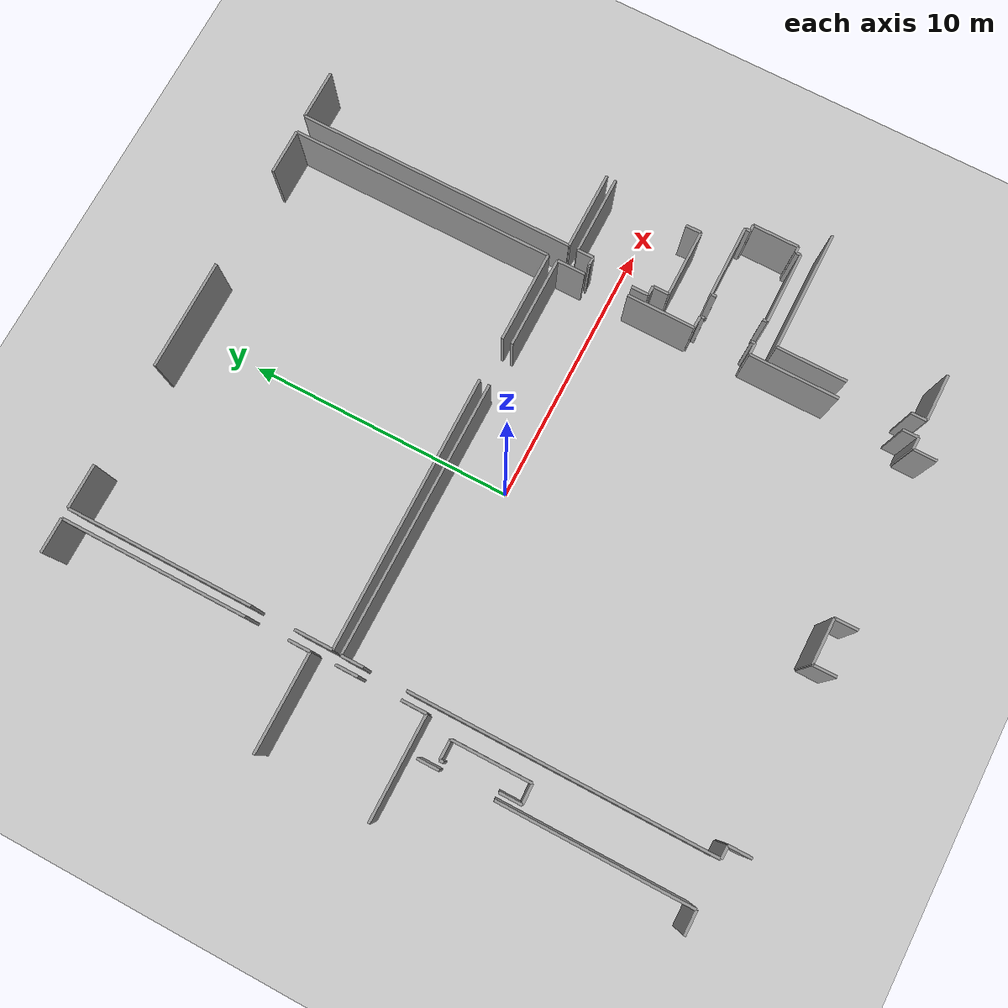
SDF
<sdf version="1.6">
 <world name="default">
  <model name="ground_plane">
   <static>1</static>
   <link name="link">
    <collision name="collision">
     <geometry><plane><normal>0 0 1</normal><size>100 100</size></plane></geometry>
     <surface><friction><ode><mu>100</mu><mu2>50</mu2></ode></friction></surface>
    </collision>
    <visual name="visual">
     <cast_shadows>0</cast_shadows>
     <geometry><plane><normal>0 0 1</normal><size>100 100</size></plane></geometry>
     <material>
      <script><uri>file://media/materials/scripts/gazebo.material</uri><name>Gazebo/Grey</name></script>
     </material>
    </visual>
   </link>
  </model>
  <model name="0510034692_Layout1">
   <static>1</static>
   <link name="Wall_60">
    <collision name="Wall_60_Collision">
     <geometry><box><size>1.30162963828 0.1 2.5</size></box></geometry>
     <pose>0.650814819138 0 1.25 0 0 0</pose>
    </collision>
    <visual name="Wall_60_Visual">
     <pose>0.650814819138 0 1.25 0 0 0</pose>
     <geometry><box><size>1.30162963828 0.1 2.5</size></box></geometry>
     <material>
      <script><uri>file://media/materials/scripts/gazebo.material</uri><name>Gazebo/Grey</name></script>
      <ambient>1 1 1 1</ambient>
     </material>
    </visual>
    <pose>47.1642162243 -0.0536741408648 0 0 0 0.0</pose>
   </link>
   <link name="Wall_61">
    <collision name="Wall_61_Collision">
     <geometry><box><size>6.98956589928 0.1 2.5</size></box></geometry>
     <pose>3.49478294964 0 1.25 0 0 0</pose>
    </collision>
    <visual name="Wall_61_Visual">
     <pose>3.49478294964 0 1.25 0 0 0</pose>
     <geometry><box><size>6.98956589928 0.1 2.5</size></box></geometry>
     <material>
      <script><uri>file://media/materials/scripts/gazebo.material</uri><name>Gazebo/Grey</name></script>
      <ambient>1 1 1 1</ambient>
     </material>
    </visual>
    <pose>48.4658458626 -0.0536741408648 0 0 0 -1.57079632679</pose>
   </link>
   <link name="Wall_62">
    <collision name="Wall_62_Collision">
     <geometry><box><size>0.827444616027 0.1 2.5</size></box></geometry>
     <pose>0.413722308013 0 1.25 0 0 0</pose>
    </collision>
    <visual name="Wall_62_Visual">
     <pose>0.413722308013 0 1.25 0 0 0</pose>
     <geometry><box><size>0.827444616027 0.1 2.5</size></box></geometry>
     <material>
      <script><uri>file://media/materials/scripts/gazebo.material</uri><name>Gazebo/Grey</name></script>
      <ambient>1 1 1 1</ambient>
     </material>
    </visual>
    <pose>48.4658458626 -8.63595355347 0 0 0 -1.57079632679</pose>
   </link>
   <link name="Wall_63">
    <collision name="Wall_63_Collision">
     <geometry><box><size>3.66774009043 0.1 2.5</size></box></geometry>
     <pose>1.83387004522 0 1.25 0 0 0</pose>
    </collision>
    <visual name="Wall_63_Visual">
     <pose>1.83387004522 0 1.25 0 0 0</pose>
     <geometry><box><size>3.66774009043 0.1 2.5</size></box></geometry>
     <material>
      <script><uri>file://media/materials/scripts/gazebo.material</uri><name>Gazebo/Grey</name></script>
      <ambient>1 1 1 1</ambient>
     </material>
    </visual>
    <pose>48.4658458626 -9.4633981695 0 0 0 -3.13962067898</pose>
   </link>
   <link name="Wall_137">
    <collision name="Wall_137_Collision">
     <geometry><box><size>0.809172568073 0.1 2.5</size></box></geometry>
     <pose>0.404586284036 0 1.25 0 0 0</pose>
    </collision>
    <visual name="Wall_137_Visual">
     <pose>0.404586284036 0 1.25 0 0 0</pose>
     <geometry><box><size>0.809172568073 0.1 2.5</size></box></geometry>
     <material>
      <script><uri>file://media/materials/scripts/gazebo.material</uri><name>Gazebo/Grey</name></script>
      <ambient>1 1 1 1</ambient>
     </material>
    </visual>
    <pose>47.1099076373 -14.1043714606 0 0 0 -1.57079632679</pose>
   </link>
   <link name="Wall_138">
    <collision name="Wall_138_Collision">
     <geometry><box><size>7.07267833963 0.1 2.5</size></box></geometry>
     <pose>3.53633916981 0 1.25 0 0 0</pose>
    </collision>
    <visual name="Wall_138_Visual">
     <pose>3.53633916981 0 1.25 0 0 0</pose>
     <geometry><box><size>7.07267833963 0.1 2.5</size></box></geometry>
     <material>
      <script><uri>file://media/materials/scripts/gazebo.material</uri><name>Gazebo/Grey</name></script>
      <ambient>1 1 1 1</ambient>
     </material>
    </visual>
    <pose>47.1099076373 -16.8781698514 0 0 0 -1.57079632679</pose>
   </link>
   <link name="Wall_139">
    <collision name="Wall_139_Collision">
     <geometry><box><size>0.875408741906 0.1 2.5</size></box></geometry>
     <pose>0.437704370953 0 1.25 0 0 0</pose>
    </collision>
    <visual name="Wall_139_Visual">
     <pose>0.437704370953 0 1.25 0 0 0</pose>
     <geometry><box><size>0.875408741906 0.1 2.5</size></box></geometry>
     <material>
      <script><uri>file://media/materials/scripts/gazebo.material</uri><name>Gazebo/Grey</name></script>
      <ambient>1 1 1 1</ambient>
     </material>
    </visual>
    <pose>47.1099076373 -23.950848191 0 0 0 3.14159265359</pose>
   </link>
   <link name="Wall_141">
    <collision name="Wall_141_Collision">
     <geometry><box><size>0.832773963347 0.1 2.5</size></box></geometry>
     <pose>0.416386981673 0 1.25 0 0 0</pose>
    </collision>
    <visual name="Wall_141_Visual">
     <pose>0.416386981673 0 1.25 0 0 0</pose>
     <geometry><box><size>0.832773963347 0.1 2.5</size></box></geometry>
     <material>
      <script><uri>file://media/materials/scripts/gazebo.material</uri><name>Gazebo/Grey</name></script>
      <ambient>1 1 1 1</ambient>
     </material>
    </visual>
    <pose>47.3913479315 -17.7198260603 0 0 0 1.57079632679</pose>
   </link>
   <link name="Wall_142">
    <collision name="Wall_142_Collision">
     <geometry><box><size>0.139578144093 0.1 2.5</size></box></geometry>
     <pose>0.0697890720464 0 1.25 0 0 0</pose>
    </collision>
    <visual name="Wall_142_Visual">
     <pose>0.0697890720464 0 1.25 0 0 0</pose>
     <geometry><box><size>0.139578144093 0.1 2.5</size></box></geometry>
     <material>
      <script><uri>file://media/materials/scripts/gazebo.material</uri><name>Gazebo/Grey</name></script>
      <ambient>1 1 1 1</ambient>
     </material>
    </visual>
    <pose>47.3913479315 -14.9158280347 0 0 0 1.57079632679</pose>
   </link>
   <link name="Wall_143">
    <collision name="Wall_143_Collision">
     <geometry><box><size>0.732658367266 0.1 2.5</size></box></geometry>
     <pose>0.366329183633 0 1.25 0 0 0</pose>
    </collision>
    <visual name="Wall_143_Visual">
     <pose>0.366329183633 0 1.25 0 0 0</pose>
     <geometry><box><size>0.732658367266 0.1 2.5</size></box></geometry>
     <material>
      <script><uri>file://media/materials/scripts/gazebo.material</uri><name>Gazebo/Grey</name></script>
      <ambient>1 1 1 1</ambient>
     </material>
    </visual>
    <pose>47.3913479315 -14.7762498906 0 0 0 0.0</pose>
   </link>
   <link name="Wall_144">
    <collision name="Wall_144_Collision">
     <geometry><box><size>2.93114102595 0.1 2.5</size></box></geometry>
     <pose>1.46557051298 0 1.25 0 0 0</pose>
    </collision>
    <visual name="Wall_144_Visual">
     <pose>1.46557051298 0 1.25 0 0 0</pose>
     <geometry><box><size>2.93114102595 0.1 2.5</size></box></geometry>
     <material>
      <script><uri>file://media/materials/scripts/gazebo.material</uri><name>Gazebo/Grey</name></script>
      <ambient>1 1 1 1</ambient>
     </material>
    </visual>
    <pose>48.1240062988 -14.7762498906 0 0 0 -1.57079632679</pose>
   </link>
   <link name="Wall_145">
    <collision name="Wall_145_Collision">
     <geometry><box><size>0.732763888251 0.1 2.5</size></box></geometry>
     <pose>0.366381944125 0 1.25 0 0 0</pose>
    </collision>
    <visual name="Wall_145_Visual">
     <pose>0.366381944125 0 1.25 0 0 0</pose>
     <geometry><box><size>0.732763888251 0.1 2.5</size></box></geometry>
     <material>
      <script><uri>file://media/materials/scripts/gazebo.material</uri><name>Gazebo/Grey</name></script>
      <ambient>1 1 1 1</ambient>
     </material>
    </visual>
    <pose>48.1240062988 -17.7073909165 0 0 0 -3.12462164713</pose>
   </link>
   <link name="Wall_204">
    <collision name="Wall_204_Collision">
     <geometry><box><size>0.829855511243 0.1 2.5</size></box></geometry>
     <pose>0.414927755622 0 1.25 0 0 0</pose>
    </collision>
    <visual name="Wall_204_Visual">
     <pose>0.414927755622 0 1.25 0 0 0</pose>
     <geometry><box><size>0.829855511243 0.1 2.5</size></box></geometry>
     <material>
      <script><uri>file://media/materials/scripts/gazebo.material</uri><name>Gazebo/Grey</name></script>
      <ambient>1 1 1 1</ambient>
     </material>
    </visual>
    <pose>48.4800574554 -10.3783963486 0 0 0 -1.57079632679</pose>
   </link>
   <link name="Wall_205">
    <collision name="Wall_205_Collision">
     <geometry><box><size>0.932128224097 0.1 2.5</size></box></geometry>
     <pose>0.466064112048 0 1.25 0 0 0</pose>
    </collision>
    <visual name="Wall_205_Visual">
     <pose>0.466064112048 0 1.25 0 0 0</pose>
     <geometry><box><size>0.932128224097 0.1 2.5</size></box></geometry>
     <material>
      <script><uri>file://media/materials/scripts/gazebo.material</uri><name>Gazebo/Grey</name></script>
      <ambient>1 1 1 1</ambient>
     </material>
    </visual>
    <pose>48.4800574554 -12.7887840079 0 0 0 -1.57079632679</pose>
   </link>
   <link name="Wall_206">
    <collision name="Wall_206_Collision">
     <geometry><box><size>3.83548051045 0.1 2.5</size></box></geometry>
     <pose>1.91774025522 0 1.25 0 0 0</pose>
    </collision>
    <visual name="Wall_206_Visual">
     <pose>1.91774025522 0 1.25 0 0 0</pose>
     <geometry><box><size>3.83548051045 0.1 2.5</size></box></geometry>
     <material>
      <script><uri>file://media/materials/scripts/gazebo.material</uri><name>Gazebo/Grey</name></script>
      <ambient>1 1 1 1</ambient>
     </material>
    </visual>
    <pose>48.4800574554 -13.720912232 0 0 0 3.14159265359</pose>
   </link>
   <link name="Wall_214">
    <collision name="Wall_214_Collision">
     <geometry><box><size>1.4216668422 0.1 2.5</size></box></geometry>
     <pose>0.710833421098 0 1.25 0 0 0</pose>
    </collision>
    <visual name="Wall_214_Visual">
     <pose>0.710833421098 0 1.25 0 0 0</pose>
     <geometry><box><size>1.4216668422 0.1 2.5</size></box></geometry>
     <material>
      <script><uri>file://media/materials/scripts/gazebo.material</uri><name>Gazebo/Grey</name></script>
      <ambient>1 1 1 1</ambient>
     </material>
    </visual>
    <pose>48.8493050912 -10.0687866472 0 0 0 1.57079632679</pose>
   </link>
   <link name="Wall_215">
    <collision name="Wall_215_Collision">
     <geometry><box><size>6.98093743219 0.1 2.5</size></box></geometry>
     <pose>3.4904687161 0 1.25 0 0 0</pose>
    </collision>
    <visual name="Wall_215_Visual">
     <pose>3.4904687161 0 1.25 0 0 0</pose>
     <geometry><box><size>6.98093743219 0.1 2.5</size></box></geometry>
     <material>
      <script><uri>file://media/materials/scripts/gazebo.material</uri><name>Gazebo/Grey</name></script>
      <ambient>1 1 1 1</ambient>
     </material>
    </visual>
    <pose>48.8493050912 -7.03143934251 0 0 0 1.57079632679</pose>
   </link>
   <link name="Wall_216">
    <collision name="Wall_216_Collision">
     <geometry><box><size>1.66123369315 0.1 2.5</size></box></geometry>
     <pose>0.830616846574 0 1.25 0 0 0</pose>
    </collision>
    <visual name="Wall_216_Visual">
     <pose>0.830616846574 0 1.25 0 0 0</pose>
     <geometry><box><size>1.66123369315 0.1 2.5</size></box></geometry>
     <material>
      <script><uri>file://media/materials/scripts/gazebo.material</uri><name>Gazebo/Grey</name></script>
      <ambient>1 1 1 1</ambient>
     </material>
    </visual>
    <pose>48.8493050912 -0.0505019103172 0 0 0 0.0</pose>
   </link>
   <link name="Wall_217">
    <collision name="Wall_217_Collision">
     <geometry><box><size>4.12821394538 0.1 2.5</size></box></geometry>
     <pose>2.06410697269 0 1.25 0 0 0</pose>
    </collision>
    <visual name="Wall_217_Visual">
     <pose>2.06410697269 0 1.25 0 0 0</pose>
     <geometry><box><size>4.12821394538 0.1 2.5</size></box></geometry>
     <material>
      <script><uri>file://media/materials/scripts/gazebo.material</uri><name>Gazebo/Grey</name></script>
      <ambient>1 1 1 1</ambient>
     </material>
    </visual>
    <pose>54.3870045134 -0.0505019103172 0 0 0 0.0</pose>
   </link>
   <link name="Wall_218">
    <collision name="Wall_218_Collision">
     <geometry><box><size>1.71160871424 0.1 2.5</size></box></geometry>
     <pose>0.855804357122 0 1.25 0 0 0</pose>
    </collision>
    <visual name="Wall_218_Visual">
     <pose>0.855804357122 0 1.25 0 0 0</pose>
     <geometry><box><size>1.71160871424 0.1 2.5</size></box></geometry>
     <material>
      <script><uri>file://media/materials/scripts/gazebo.material</uri><name>Gazebo/Grey</name></script>
      <ambient>1 1 1 1</ambient>
     </material>
    </visual>
    <pose>62.4084335652 -0.0505019103172 0 0 0 0.0</pose>
   </link>
   <link name="Wall_219">
    <collision name="Wall_219_Collision">
     <geometry><box><size>9.96790971578 0.1 2.5</size></box></geometry>
     <pose>4.98395485789 0 1.25 0 0 0</pose>
    </collision>
    <visual name="Wall_219_Visual">
     <pose>4.98395485789 0 1.25 0 0 0</pose>
     <geometry><box><size>9.96790971578 0.1 2.5</size></box></geometry>
     <material>
      <script><uri>file://media/materials/scripts/gazebo.material</uri><name>Gazebo/Grey</name></script>
      <ambient>1 1 1 1</ambient>
     </material>
    </visual>
    <pose>64.1200422795 -0.0505019103172 0 0 0 -1.57079632679</pose>
   </link>
   <link name="Wall_220">
    <collision name="Wall_220_Collision">
     <geometry><box><size>3.40659494042 0.1 2.5</size></box></geometry>
     <pose>1.70329747021 0 1.25 0 0 0</pose>
    </collision>
    <visual name="Wall_220_Visual">
     <pose>1.70329747021 0 1.25 0 0 0</pose>
     <geometry><box><size>3.40659494042 0.1 2.5</size></box></geometry>
     <material>
      <script><uri>file://media/materials/scripts/gazebo.material</uri><name>Gazebo/Grey</name></script>
      <ambient>1 1 1 1</ambient>
     </material>
    </visual>
    <pose>64.1200422795 -10.0184116261 0 0 0 3.14159265359</pose>
   </link>
   <link name="Wall_221">
    <collision name="Wall_221_Collision">
     <geometry><box><size>10.2256189196 0.1 2.5</size></box></geometry>
     <pose>5.1128094598 0 1.25 0 0 0</pose>
    </collision>
    <visual name="Wall_221_Visual">
     <pose>5.1128094598 0 1.25 0 0 0</pose>
     <geometry><box><size>10.2256189196 0.1 2.5</size></box></geometry>
     <material>
      <script><uri>file://media/materials/scripts/gazebo.material</uri><name>Gazebo/Grey</name></script>
      <ambient>1 1 1 1</ambient>
     </material>
    </visual>
    <pose>59.0747999274 -10.0184116261 0 0 0 -3.13666627943</pose>
   </link>
   <link name="Wall_222">
    <collision name="Wall_222_Collision">
     <geometry><box><size>10.489551307 0.1 2.5</size></box></geometry>
     <pose>5.24477565351 0 1.25 0 0 0</pose>
    </collision>
    <visual name="Wall_222_Visual">
     <pose>5.24477565351 0 1.25 0 0 0</pose>
     <geometry><box><size>10.489551307 0.1 2.5</size></box></geometry>
     <material>
      <script><uri>file://media/materials/scripts/gazebo.material</uri><name>Gazebo/Grey</name></script>
      <ambient>1 1 1 1</ambient>
     </material>
    </visual>
    <pose>64.7758057783 -10.489551307 0 0 0 1.57079632679</pose>
   </link>
   <link name="Wall_223">
    <collision name="Wall_223_Collision">
     <geometry><box><size>1.8631144452 0.1 2.5</size></box></geometry>
     <pose>0.931557222598 0 1.25 0 0 0</pose>
    </collision>
    <visual name="Wall_223_Visual">
     <pose>0.931557222598 0 1.25 0 0 0</pose>
     <geometry><box><size>1.8631144452 0.1 2.5</size></box></geometry>
     <material>
      <script><uri>file://media/materials/scripts/gazebo.material</uri><name>Gazebo/Grey</name></script>
      <ambient>1 1 1 1</ambient>
     </material>
    </visual>
    <pose>64.7758057783 -0.0 0 0 0 0.0</pose>
   </link>
   <link name="Wall_227">
    <collision name="Wall_227_Collision">
     <geometry><box><size>2.912868978 0.1 2.5</size></box></geometry>
     <pose>1.456434489 0 1.25 0 0 0</pose>
    </collision>
    <visual name="Wall_227_Visual">
     <pose>1.456434489 0 1.25 0 0 0</pose>
     <geometry><box><size>2.912868978 0.1 2.5</size></box></geometry>
     <material>
      <script><uri>file://media/materials/scripts/gazebo.material</uri><name>Gazebo/Grey</name></script>
      <ambient>1 1 1 1</ambient>
     </material>
    </visual>
    <pose>67.6886747563 -10.489551307 0 0 0 3.14159265359</pose>
   </link>
   <link name="Wall_314">
    <collision name="Wall_314_Collision">
     <geometry><box><size>0.565925929686 0.1 2.5</size></box></geometry>
     <pose>0.282962964843 0 1.25 0 0 0</pose>
    </collision>
    <visual name="Wall_314_Visual">
     <pose>0.282962964843 0 1.25 0 0 0</pose>
     <geometry><box><size>0.565925929686 0.1 2.5</size></box></geometry>
     <material>
      <script><uri>file://media/materials/scripts/gazebo.material</uri><name>Gazebo/Grey</name></script>
      <ambient>1 1 1 1</ambient>
     </material>
    </visual>
    <pose>64.781388904 -23.9493255203 0 0 0 1.57079632679</pose>
   </link>
   <link name="Wall_315">
    <collision name="Wall_315_Collision">
     <geometry><box><size>2.61176085442 0.1 2.5</size></box></geometry>
     <pose>1.30588042721 0 1.25 0 0 0</pose>
    </collision>
    <visual name="Wall_315_Visual">
     <pose>1.30588042721 0 1.25 0 0 0</pose>
     <geometry><box><size>2.61176085442 0.1 2.5</size></box></geometry>
     <material>
      <script><uri>file://media/materials/scripts/gazebo.material</uri><name>Gazebo/Grey</name></script>
      <ambient>1 1 1 1</ambient>
     </material>
    </visual>
    <pose>64.781388904 -21.0183113836 0 0 0 1.57079632679</pose>
   </link>
   <link name="Wall_316">
    <collision name="Wall_316_Collision">
     <geometry><box><size>4.55798773996 0.1 2.5</size></box></geometry>
     <pose>2.27899386998 0 1.25 0 0 0</pose>
    </collision>
    <visual name="Wall_316_Visual">
     <pose>2.27899386998 0 1.25 0 0 0</pose>
     <geometry><box><size>4.55798773996 0.1 2.5</size></box></geometry>
     <material>
      <script><uri>file://media/materials/scripts/gazebo.material</uri><name>Gazebo/Grey</name></script>
      <ambient>1 1 1 1</ambient>
     </material>
    </visual>
    <pose>64.781388904 -18.4065505292 0 0 0 0.0</pose>
   </link>
   <link name="Wall_323">
    <collision name="Wall_323_Collision">
     <geometry><box><size>1.78190863671 0.1 2.5</size></box></geometry>
     <pose>0.890954318355 0 1.25 0 0 0</pose>
    </collision>
    <visual name="Wall_323_Visual">
     <pose>0.890954318355 0 1.25 0 0 0</pose>
     <geometry><box><size>1.78190863671 0.1 2.5</size></box></geometry>
     <material>
      <script><uri>file://media/materials/scripts/gazebo.material</uri><name>Gazebo/Grey</name></script>
      <ambient>1 1 1 1</ambient>
     </material>
    </visual>
    <pose>66.5632942472 -23.9527515293 0 0 0 3.13966998986</pose>
   </link>
   <link name="Wall_324">
    <collision name="Wall_324_Collision">
     <geometry><box><size>0.596379342942 0.1 2.5</size></box></geometry>
     <pose>0.298189671471 0 1.25 0 0 0</pose>
    </collision>
    <visual name="Wall_324_Visual">
     <pose>0.298189671471 0 1.25 0 0 0</pose>
     <geometry><box><size>0.596379342942 0.1 2.5</size></box></geometry>
     <material>
      <script><uri>file://media/materials/scripts/gazebo.material</uri><name>Gazebo/Grey</name></script>
      <ambient>1 1 1 1</ambient>
     </material>
    </visual>
    <pose>64.7845611346 -14.3194486917 0 0 0 1.57079632679</pose>
   </link>
   <link name="Wall_325">
    <collision name="Wall_325_Collision">
     <geometry><box><size>0.355289821327 0.1 2.5</size></box></geometry>
     <pose>0.177644910664 0 1.25 0 0 0</pose>
    </collision>
    <visual name="Wall_325_Visual">
     <pose>0.177644910664 0 1.25 0 0 0</pose>
     <geometry><box><size>0.355289821327 0.1 2.5</size></box></geometry>
     <material>
      <script><uri>file://media/materials/scripts/gazebo.material</uri><name>Gazebo/Grey</name></script>
      <ambient>1 1 1 1</ambient>
     </material>
    </visual>
    <pose>64.7845611346 -13.7230693488 0 0 0 3.14159265359</pose>
   </link>
   <link name="Wall_326">
    <collision name="Wall_326_Collision">
     <geometry><box><size>0.647135031703 0.1 2.5</size></box></geometry>
     <pose>0.323567515852 0 1.25 0 0 0</pose>
    </collision>
    <visual name="Wall_326_Visual">
     <pose>0.323567515852 0 1.25 0 0 0</pose>
     <geometry><box><size>0.647135031703 0.1 2.5</size></box></geometry>
     <material>
      <script><uri>file://media/materials/scripts/gazebo.material</uri><name>Gazebo/Grey</name></script>
      <ambient>1 1 1 1</ambient>
     </material>
    </visual>
    <pose>64.4292713133 -13.7230693488 0 0 0 1.57079632679</pose>
   </link>
   <link name="Wall_327">
    <collision name="Wall_327_Collision">
     <geometry><box><size>0.0661092846113 0.1 2.5</size></box></geometry>
     <pose>0.0330546423056 0 1.25 0 0 0</pose>
    </collision>
    <visual name="Wall_327_Visual">
     <pose>0.0330546423056 0 1.25 0 0 0</pose>
     <geometry><box><size>0.0661092846113 0.1 2.5</size></box></geometry>
     <material>
      <script><uri>file://media/materials/scripts/gazebo.material</uri><name>Gazebo/Grey</name></script>
      <ambient>1 1 1 1</ambient>
     </material>
    </visual>
    <pose>64.4292713133 -11.4936257199 0 0 0 1.57079632679</pose>
   </link>
   <link name="Wall_328">
    <collision name="Wall_328_Collision">
     <geometry><box><size>0.342093342249 0.1 2.5</size></box></geometry>
     <pose>0.171046671125 0 1.25 0 0 0</pose>
    </collision>
    <visual name="Wall_328_Visual">
     <pose>0.171046671125 0 1.25 0 0 0</pose>
     <geometry><box><size>0.342093342249 0.1 2.5</size></box></geometry>
     <material>
      <script><uri>file://media/materials/scripts/gazebo.material</uri><name>Gazebo/Grey</name></script>
      <ambient>1 1 1 1</ambient>
     </material>
    </visual>
    <pose>64.4292713133 -11.4275164353 0 0 0 0.0</pose>
   </link>
   <link name="Wall_329">
    <collision name="Wall_329_Collision">
     <geometry><box><size>0.595871786055 0.1 2.5</size></box></geometry>
     <pose>0.297935893027 0 1.25 0 0 0</pose>
    </collision>
    <visual name="Wall_329_Visual">
     <pose>0.297935893027 0 1.25 0 0 0</pose>
     <geometry><box><size>0.595871786055 0.1 2.5</size></box></geometry>
     <material>
      <script><uri>file://media/materials/scripts/gazebo.material</uri><name>Gazebo/Grey</name></script>
      <ambient>1 1 1 1</ambient>
     </material>
    </visual>
    <pose>64.7713646555 -11.4275164353 0 0 0 1.57079632679</pose>
   </link>
   <link name="Wall_330">
    <collision name="Wall_330_Collision">
     <geometry><box><size>2.9239083403 0.1 2.5</size></box></geometry>
     <pose>1.46195417015 0 1.25 0 0 0</pose>
    </collision>
    <visual name="Wall_330_Visual">
     <pose>1.46195417015 0 1.25 0 0 0</pose>
     <geometry><box><size>2.9239083403 0.1 2.5</size></box></geometry>
     <material>
      <script><uri>file://media/materials/scripts/gazebo.material</uri><name>Gazebo/Grey</name></script>
      <ambient>1 1 1 1</ambient>
     </material>
    </visual>
    <pose>64.7713646555 -10.8316446493 0 0 0 0.0</pose>
   </link>
   <link name="Wall_368">
    <collision name="Wall_368_Collision">
     <geometry><box><size>0.573158615334 0.1 2.5</size></box></geometry>
     <pose>0.286579307667 0 1.25 0 0 0</pose>
    </collision>
    <visual name="Wall_368_Visual">
     <pose>0.286579307667 0 1.25 0 0 0</pose>
     <geometry><box><size>0.573158615334 0.1 2.5</size></box></geometry>
     <material>
      <script><uri>file://media/materials/scripts/gazebo.material</uri><name>Gazebo/Grey</name></script>
      <ambient>1 1 1 1</ambient>
     </material>
    </visual>
    <pose>67.3206960128 -13.7488278608 0 0 0 -1.57079632679</pose>
   </link>
   <link name="Wall_369">
    <collision name="Wall_369_Collision">
     <geometry><box><size>2.53613614788 0.1 2.5</size></box></geometry>
     <pose>1.26806807394 0 1.25 0 0 0</pose>
    </collision>
    <visual name="Wall_369_Visual">
     <pose>1.26806807394 0 1.25 0 0 0</pose>
     <geometry><box><size>2.53613614788 0.1 2.5</size></box></geometry>
     <material>
      <script><uri>file://media/materials/scripts/gazebo.material</uri><name>Gazebo/Grey</name></script>
      <ambient>1 1 1 1</ambient>
     </material>
    </visual>
    <pose>67.3206960128 -14.3219864761 0 0 0 3.1405920035</pose>
   </link>
   <link name="Wall_370">
    <collision name="Wall_370_Collision">
     <geometry><box><size>11.1681548658 0.1 2.5</size></box></geometry>
     <pose>5.58407743288 0 1.25 0 0 0</pose>
    </collision>
    <visual name="Wall_370_Visual">
     <pose>5.58407743288 0 1.25 0 0 0</pose>
     <geometry><box><size>11.1681548658 0.1 2.5</size></box></geometry>
     <material>
      <script><uri>file://media/materials/scripts/gazebo.material</uri><name>Gazebo/Grey</name></script>
      <ambient>1 1 1 1</ambient>
     </material>
    </visual>
    <pose>48.818344121 -23.9681051252 0 0 0 1.57079632679</pose>
   </link>
   <link name="Wall_371">
    <collision name="Wall_371_Collision">
     <geometry><box><size>0.834804190897 0.1 2.5</size></box></geometry>
     <pose>0.417402095449 0 1.25 0 0 0</pose>
    </collision>
    <visual name="Wall_371_Visual">
     <pose>0.417402095449 0 1.25 0 0 0</pose>
     <geometry><box><size>0.834804190897 0.1 2.5</size></box></geometry>
     <material>
      <script><uri>file://media/materials/scripts/gazebo.material</uri><name>Gazebo/Grey</name></script>
      <ambient>1 1 1 1</ambient>
     </material>
    </visual>
    <pose>48.818344121 -11.2265239078 0 0 0 1.57079632679</pose>
   </link>
   <link name="Wall_372">
    <collision name="Wall_372_Collision">
     <geometry><box><size>10.2534104651 0.1 2.5</size></box></geometry>
     <pose>5.12670523253 0 1.25 0 0 0</pose>
    </collision>
    <visual name="Wall_372_Visual">
     <pose>5.12670523253 0 1.25 0 0 0</pose>
     <geometry><box><size>10.2534104651 0.1 2.5</size></box></geometry>
     <material>
      <script><uri>file://media/materials/scripts/gazebo.material</uri><name>Gazebo/Grey</name></script>
      <ambient>1 1 1 1</ambient>
     </material>
    </visual>
    <pose>48.818344121 -10.3917197169 0 0 0 0.0</pose>
   </link>
   <link name="Wall_373">
    <collision name="Wall_373_Collision">
     <geometry><box><size>3.39999670088 0.1 2.5</size></box></geometry>
     <pose>1.69999835044 0 1.25 0 0 0</pose>
    </collision>
    <visual name="Wall_373_Visual">
     <pose>1.69999835044 0 1.25 0 0 0</pose>
     <geometry><box><size>3.39999670088 0.1 2.5</size></box></geometry>
     <material>
      <script><uri>file://media/materials/scripts/gazebo.material</uri><name>Gazebo/Grey</name></script>
      <ambient>1 1 1 1</ambient>
     </material>
    </visual>
    <pose>60.6974592971 -10.3917197169 0 0 0 0.0</pose>
   </link>
   <link name="Wall_374">
    <collision name="Wall_374_Collision">
     <geometry><box><size>1.05749477534 0.1 2.5</size></box></geometry>
     <pose>0.528747387668 0 1.25 0 0 0</pose>
    </collision>
    <visual name="Wall_374_Visual">
     <pose>0.528747387668 0 1.25 0 0 0</pose>
     <geometry><box><size>1.05749477534 0.1 2.5</size></box></geometry>
     <material>
      <script><uri>file://media/materials/scripts/gazebo.material</uri><name>Gazebo/Grey</name></script>
      <ambient>1 1 1 1</ambient>
     </material>
    </visual>
    <pose>64.097455998 -10.3917197169 0 0 0 -1.57079632679</pose>
   </link>
   <link name="Wall_375">
    <collision name="Wall_375_Collision">
     <geometry><box><size>2.52674507575 0.1 2.5</size></box></geometry>
     <pose>1.26337253787 0 1.25 0 0 0</pose>
    </collision>
    <visual name="Wall_375_Visual">
     <pose>1.26337253787 0 1.25 0 0 0</pose>
     <geometry><box><size>2.52674507575 0.1 2.5</size></box></geometry>
     <material>
      <script><uri>file://media/materials/scripts/gazebo.material</uri><name>Gazebo/Grey</name></script>
      <ambient>1 1 1 1</ambient>
     </material>
    </visual>
    <pose>64.097455998 -13.0935719189 0 0 0 -1.57079632679</pose>
   </link>
   <link name="Wall_376">
    <collision name="Wall_376_Collision">
     <geometry><box><size>0.465730187058 0.1 2.5</size></box></geometry>
     <pose>0.232865093529 0 1.25 0 0 0</pose>
    </collision>
    <visual name="Wall_376_Visual">
     <pose>0.232865093529 0 1.25 0 0 0</pose>
     <geometry><box><size>0.465730187058 0.1 2.5</size></box></geometry>
     <material>
      <script><uri>file://media/materials/scripts/gazebo.material</uri><name>Gazebo/Grey</name></script>
      <ambient>1 1 1 1</ambient>
     </material>
    </visual>
    <pose>64.097455998 -15.6203169947 0 0 0 -0.0141679892644</pose>
   </link>
   <link name="Wall_377">
    <collision name="Wall_377_Collision">
     <geometry><box><size>0.171681117234 0.1 2.5</size></box></geometry>
     <pose>0.0858405586171 0 1.25 0 0 0</pose>
    </collision>
    <visual name="Wall_377_Visual">
     <pose>0.0858405586171 0 1.25 0 0 0</pose>
     <geometry><box><size>0.171681117234 0.1 2.5</size></box></geometry>
     <material>
      <script><uri>file://media/materials/scripts/gazebo.material</uri><name>Gazebo/Grey</name></script>
      <ambient>1 1 1 1</ambient>
     </material>
    </visual>
    <pose>64.5631394424 -15.6269152342 0 0 0 -1.57079632679</pose>
   </link>
   <link name="Wall_378">
    <collision name="Wall_378_Collision">
     <geometry><box><size>0.153535958502 0.1 2.5</size></box></geometry>
     <pose>0.0767679792511 0 1.25 0 0 0</pose>
    </collision>
    <visual name="Wall_378_Visual">
     <pose>0.0767679792511 0 1.25 0 0 0</pose>
     <geometry><box><size>0.153535958502 0.1 2.5</size></box></geometry>
     <material>
      <script><uri>file://media/materials/scripts/gazebo.material</uri><name>Gazebo/Grey</name></script>
      <ambient>1 1 1 1</ambient>
     </material>
    </visual>
    <pose>64.5631394424 -17.5480180538 0 0 0 -1.57079632679</pose>
   </link>
   <link name="Wall_379">
    <collision name="Wall_379_Collision">
     <geometry><box><size>0.446523171875 0.1 2.5</size></box></geometry>
     <pose>0.223261585938 0 1.25 0 0 0</pose>
    </collision>
    <visual name="Wall_379_Visual">
     <pose>0.223261585938 0 1.25 0 0 0</pose>
     <geometry><box><size>0.446523171875 0.1 2.5</size></box></geometry>
     <material>
      <script><uri>file://media/materials/scripts/gazebo.material</uri><name>Gazebo/Grey</name></script>
      <ambient>1 1 1 1</ambient>
     </material>
    </visual>
    <pose>64.5631394424 -17.7015540123 0 0 0 3.14159265359</pose>
   </link>
   <link name="Wall_380">
    <collision name="Wall_380_Collision">
     <geometry><box><size>3.32259427552 0.1 2.5</size></box></geometry>
     <pose>1.66129713776 0 1.25 0 0 0</pose>
    </collision>
    <visual name="Wall_380_Visual">
     <pose>1.66129713776 0 1.25 0 0 0</pose>
     <geometry><box><size>3.32259427552 0.1 2.5</size></box></geometry>
     <material>
      <script><uri>file://media/materials/scripts/gazebo.material</uri><name>Gazebo/Grey</name></script>
      <ambient>1 1 1 1</ambient>
     </material>
    </visual>
    <pose>64.1166162705 -17.7015540123 0 0 0 -1.57079632679</pose>
   </link>
   <link name="Wall_381">
    <collision name="Wall_381_Collision">
     <geometry><box><size>0.581406414758 0.1 2.5</size></box></geometry>
     <pose>0.290703207379 0 1.25 0 0 0</pose>
    </collision>
    <visual name="Wall_381_Visual">
     <pose>0.290703207379 0 1.25 0 0 0</pose>
     <geometry><box><size>0.581406414758 0.1 2.5</size></box></geometry>
     <material>
      <script><uri>file://media/materials/scripts/gazebo.material</uri><name>Gazebo/Grey</name></script>
      <ambient>1 1 1 1</ambient>
     </material>
    </visual>
    <pose>64.1166162705 -23.3666502134 0 0 0 -1.57079632679</pose>
   </link>
   <link name="Wall_382">
    <collision name="Wall_382_Collision">
     <geometry><box><size>0.455024749743 0.1 2.5</size></box></geometry>
     <pose>0.227512374871 0 1.25 0 0 0</pose>
    </collision>
    <visual name="Wall_382_Visual">
     <pose>0.227512374871 0 1.25 0 0 0</pose>
     <geometry><box><size>0.455024749743 0.1 2.5</size></box></geometry>
     <material>
      <script><uri>file://media/materials/scripts/gazebo.material</uri><name>Gazebo/Grey</name></script>
      <ambient>1 1 1 1</ambient>
     </material>
    </visual>
    <pose>64.1166162705 -23.9480566281 0 0 0 3.14159265359</pose>
   </link>
   <link name="Wall_383">
    <collision name="Wall_383_Collision">
     <geometry><box><size>0.876550744903 0.1 2.5</size></box></geometry>
     <pose>0.438275372452 0 1.25 0 0 0</pose>
    </collision>
    <visual name="Wall_383_Visual">
     <pose>0.438275372452 0 1.25 0 0 0</pose>
     <geometry><box><size>0.876550744903 0.1 2.5</size></box></geometry>
     <material>
      <script><uri>file://media/materials/scripts/gazebo.material</uri><name>Gazebo/Grey</name></script>
      <ambient>1 1 1 1</ambient>
     </material>
    </visual>
    <pose>63.6615915208 -23.9480566281 0 0 0 -1.57079632679</pose>
   </link>
   <link name="Wall_384">
    <collision name="Wall_384_Collision">
     <geometry><box><size>0.859293810724 0.1 2.5</size></box></geometry>
     <pose>0.429646905362 0 1.25 0 0 0</pose>
    </collision>
    <visual name="Wall_384_Visual">
     <pose>0.429646905362 0 1.25 0 0 0</pose>
     <geometry><box><size>0.859293810724 0.1 2.5</size></box></geometry>
     <material>
      <script><uri>file://media/materials/scripts/gazebo.material</uri><name>Gazebo/Grey</name></script>
      <ambient>1 1 1 1</ambient>
     </material>
    </visual>
    <pose>57.3085019585 -24.824607373 0 0 0 1.57079632679</pose>
   </link>
   <link name="Wall_385">
    <collision name="Wall_385_Collision">
     <geometry><box><size>1.69067199263 0.1 2.5</size></box></geometry>
     <pose>0.845335996315 0 1.25 0 0 0</pose>
    </collision>
    <visual name="Wall_385_Visual">
     <pose>0.845335996315 0 1.25 0 0 0</pose>
     <geometry><box><size>1.69067199263 0.1 2.5</size></box></geometry>
     <material>
      <script><uri>file://media/materials/scripts/gazebo.material</uri><name>Gazebo/Grey</name></script>
      <ambient>1 1 1 1</ambient>
     </material>
    </visual>
    <pose>57.3085019585 -23.9653135623 0 0 0 3.14159265359</pose>
   </link>
   <link name="Wall_386">
    <collision name="Wall_386_Collision">
     <geometry><box><size>0.864369379601 0.1 2.5</size></box></geometry>
     <pose>0.4321846898 0 1.25 0 0 0</pose>
    </collision>
    <visual name="Wall_386_Visual">
     <pose>0.4321846898 0 1.25 0 0 0</pose>
     <geometry><box><size>0.864369379601 0.1 2.5</size></box></geometry>
     <material>
      <script><uri>file://media/materials/scripts/gazebo.material</uri><name>Gazebo/Grey</name></script>
      <ambient>1 1 1 1</ambient>
     </material>
    </visual>
    <pose>55.6178299659 -23.9653135623 0 0 0 -1.57079632679</pose>
   </link>
   <link name="Wall_387">
    <collision name="Wall_387_Collision">
     <geometry><box><size>0.85168045741 0.1 2.5</size></box></geometry>
     <pose>0.425840228705 0 1.25 0 0 0</pose>
    </collision>
    <visual name="Wall_387_Visual">
     <pose>0.425840228705 0 1.25 0 0 0</pose>
     <geometry><box><size>0.85168045741 0.1 2.5</size></box></geometry>
     <material>
      <script><uri>file://media/materials/scripts/gazebo.material</uri><name>Gazebo/Grey</name></script>
      <ambient>1 1 1 1</ambient>
     </material>
    </visual>
    <pose>49.2902451373 -24.8296829419 0 0 0 1.57079632679</pose>
   </link>
   <link name="Wall_388">
    <collision name="Wall_388_Collision">
     <geometry><box><size>0.472004795383 0.1 2.5</size></box></geometry>
     <pose>0.236002397691 0 1.25 0 0 0</pose>
    </collision>
    <visual name="Wall_388_Visual">
     <pose>0.236002397691 0 1.25 0 0 0</pose>
     <geometry><box><size>0.472004795383 0.1 2.5</size></box></geometry>
     <material>
      <script><uri>file://media/materials/scripts/gazebo.material</uri><name>Gazebo/Grey</name></script>
      <ambient>1 1 1 1</ambient>
     </material>
    </visual>
    <pose>49.2902451373 -23.9780024845 0 0 0 3.12062234811</pose>
   </link>
   <link name="Wall_389">
    <collision name="Wall_389_Collision">
     <geometry><box><size>0.170285335793 0.1 2.5</size></box></geometry>
     <pose>0.0851426678966 0 1.25 0 0 0</pose>
    </collision>
    <visual name="Wall_389_Visual">
     <pose>0.0851426678966 0 1.25 0 0 0</pose>
     <geometry><box><size>0.170285335793 0.1 2.5</size></box></geometry>
     <material>
      <script><uri>file://media/materials/scripts/gazebo.material</uri><name>Gazebo/Grey</name></script>
      <ambient>1 1 1 1</ambient>
     </material>
    </visual>
    <pose>65.4592311274 -17.7387325543 0 0 0 1.57079632679</pose>
   </link>
   <link name="Wall_390">
    <collision name="Wall_390_Collision">
     <geometry><box><size>0.203022755044 0.1 2.5</size></box></geometry>
     <pose>0.101511377522 0 1.25 0 0 0</pose>
    </collision>
    <visual name="Wall_390_Visual">
     <pose>0.101511377522 0 1.25 0 0 0</pose>
     <geometry><box><size>0.203022755044 0.1 2.5</size></box></geometry>
     <material>
      <script><uri>file://media/materials/scripts/gazebo.material</uri><name>Gazebo/Grey</name></script>
      <ambient>1 1 1 1</ambient>
     </material>
    </visual>
    <pose>65.4592311274 -15.8126810551 0 0 0 1.57079632679</pose>
   </link>
   <link name="Wall_391">
    <collision name="Wall_391_Collision">
     <geometry><box><size>2.71162267206 0.1 2.5</size></box></geometry>
     <pose>1.35581133603 0 1.25 0 0 0</pose>
    </collision>
    <visual name="Wall_391_Visual">
     <pose>1.35581133603 0 1.25 0 0 0</pose>
     <geometry><box><size>2.71162267206 0.1 2.5</size></box></geometry>
     <material>
      <script><uri>file://media/materials/scripts/gazebo.material</uri><name>Gazebo/Grey</name></script>
      <ambient>1 1 1 1</ambient>
     </material>
    </visual>
    <pose>65.4592311274 -15.6096583 0 0 0 0.0</pose>
   </link>
   <link name="Wall_392">
    <collision name="Wall_392_Collision">
     <geometry><box><size>0.197566518502 0.1 2.5</size></box></geometry>
     <pose>0.0987832592512 0 1.25 0 0 0</pose>
    </collision>
    <visual name="Wall_392_Visual">
     <pose>0.0987832592512 0 1.25 0 0 0</pose>
     <geometry><box><size>0.197566518502 0.1 2.5</size></box></geometry>
     <material>
      <script><uri>file://media/materials/scripts/gazebo.material</uri><name>Gazebo/Grey</name></script>
      <ambient>1 1 1 1</ambient>
     </material>
    </visual>
    <pose>68.1708537995 -15.6096583 0 0 0 -1.57079632679</pose>
   </link>
   <link name="Wall_393">
    <collision name="Wall_393_Collision">
     <geometry><box><size>0.241470189281 0.1 2.5</size></box></geometry>
     <pose>0.12073509464 0 1.25 0 0 0</pose>
    </collision>
    <visual name="Wall_393_Visual">
     <pose>0.12073509464 0 1.25 0 0 0</pose>
     <geometry><box><size>0.241470189281 0.1 2.5</size></box></geometry>
     <material>
      <script><uri>file://media/materials/scripts/gazebo.material</uri><name>Gazebo/Grey</name></script>
      <ambient>1 1 1 1</ambient>
     </material>
    </visual>
    <pose>68.1708537995 -15.8072248185 0 0 0 0.0</pose>
   </link>
   <link name="Wall_394">
    <collision name="Wall_394_Collision">
     <geometry><box><size>1.72797742387 0.1 2.5</size></box></geometry>
     <pose>0.863988711935 0 1.25 0 0 0</pose>
    </collision>
    <visual name="Wall_394_Visual">
     <pose>0.863988711935 0 1.25 0 0 0</pose>
     <geometry><box><size>1.72797742387 0.1 2.5</size></box></geometry>
     <material>
      <script><uri>file://media/materials/scripts/gazebo.material</uri><name>Gazebo/Grey</name></script>
      <ambient>1 1 1 1</ambient>
     </material>
    </visual>
    <pose>68.4123239888 -15.8072248185 0 0 0 -1.57079632679</pose>
   </link>
   <link name="Wall_395">
    <collision name="Wall_395_Collision">
     <geometry><box><size>0.235887063517 0.1 2.5</size></box></geometry>
     <pose>0.117943531758 0 1.25 0 0 0</pose>
    </collision>
    <visual name="Wall_395_Visual">
     <pose>0.117943531758 0 1.25 0 0 0</pose>
     <geometry><box><size>0.235887063517 0.1 2.5</size></box></geometry>
     <material>
      <script><uri>file://media/materials/scripts/gazebo.material</uri><name>Gazebo/Grey</name></script>
      <ambient>1 1 1 1</ambient>
     </material>
    </visual>
    <pose>68.4123239888 -17.5352022424 0 0 0 3.14159265359</pose>
   </link>
   <link name="Wall_396">
    <collision name="Wall_396_Collision">
     <geometry><box><size>0.191983392739 0.1 2.5</size></box></geometry>
     <pose>0.0959916963693 0 1.25 0 0 0</pose>
    </collision>
    <visual name="Wall_396_Visual">
     <pose>0.0959916963693 0 1.25 0 0 0</pose>
     <geometry><box><size>0.191983392739 0.1 2.5</size></box></geometry>
     <material>
      <script><uri>file://media/materials/scripts/gazebo.material</uri><name>Gazebo/Grey</name></script>
      <ambient>1 1 1 1</ambient>
     </material>
    </visual>
    <pose>68.1764369253 -17.5352022424 0 0 0 -1.57079632679</pose>
   </link>
   <link name="Wall_397">
    <collision name="Wall_397_Collision">
     <geometry><box><size>2.71723033235 0.1 2.5</size></box></geometry>
     <pose>1.35861516618 0 1.25 0 0 0</pose>
    </collision>
    <visual name="Wall_397_Visual">
     <pose>1.35861516618 0 1.25 0 0 0</pose>
     <geometry><box><size>2.71723033235 0.1 2.5</size></box></geometry>
     <material>
      <script><uri>file://media/materials/scripts/gazebo.material</uri><name>Gazebo/Grey</name></script>
      <ambient>1 1 1 1</ambient>
     </material>
    </visual>
    <pose>68.1764369253 -17.7271856351 0 0 0 -3.13734312281</pose>
   </link>
   <pose>-56.4 12.4296829419 0 0 0 0</pose>
  </model>
 </world>
</sdf>
